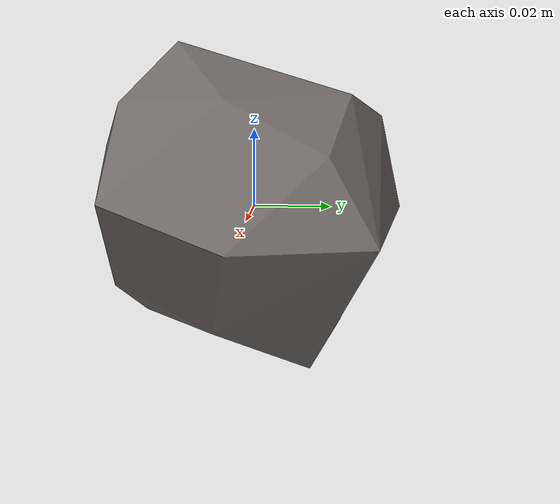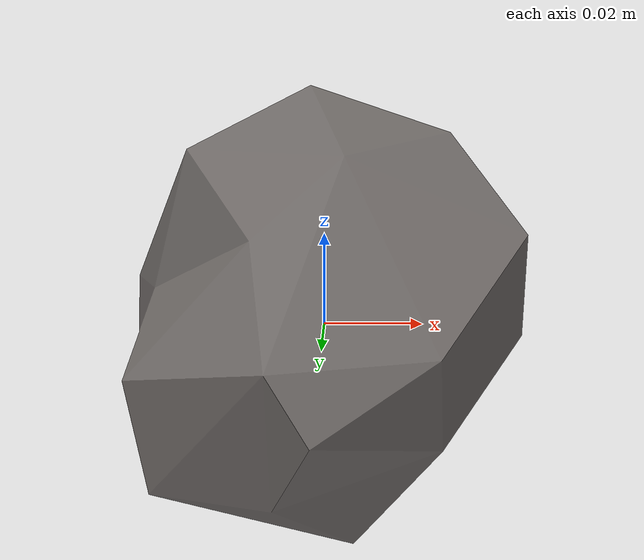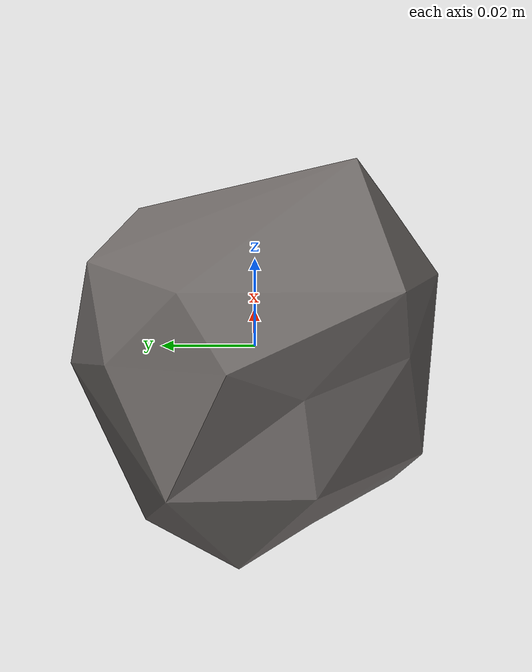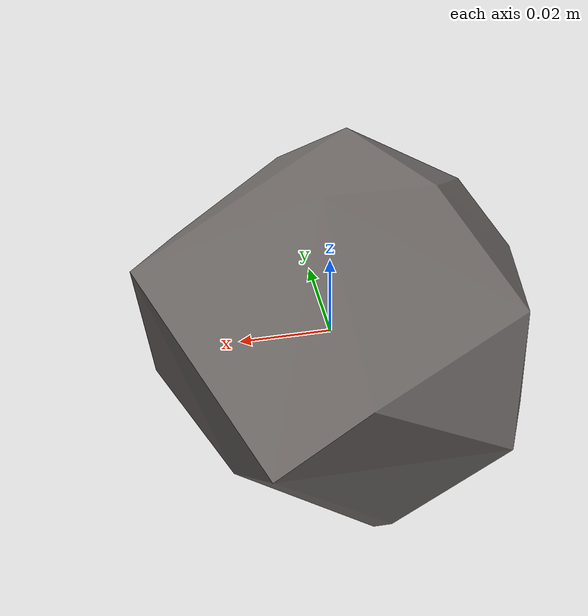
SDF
<?xml version="1.0"?>
<sdf version="1.6">
  <model name="small_rock_fall">
    <static>true</static>
    <link name="base_link">
      <collision name="collision">
        <geometry>
          <mesh>
            <uri>meshes/FallingRock06.dae</uri>
            <scale>0.75 0.75 0.75</scale>
          </mesh>
        </geometry>
      </collision>
      <visual name="visual">
        <geometry>
          <mesh>
            <uri>meshes/FallingRock06.dae</uri>
            <scale>0.75 0.75 0.75</scale>
          </mesh>
        </geometry>
        <material>
          <ambient>0.36 0.34 0.33 1.0</ambient>
          <diffuse>0.43 0.41 0.40 1.0</diffuse>
          <specular>0.07 0.07 0.07 1.0</specular>
        </material>
      </visual>
    </link>
  </model>
</sdf>
